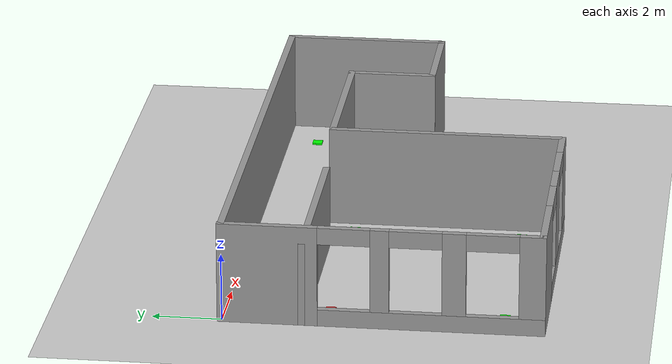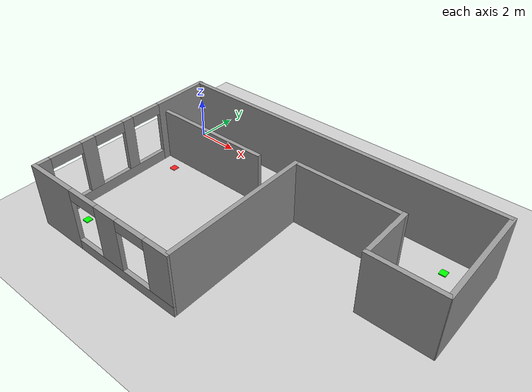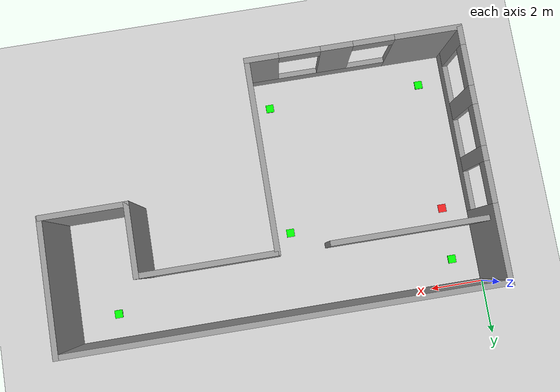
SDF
<sdf version="1.6">
 <world name="default">
  <light name="sun" type="directional">
   <pose>0 0 10 0 -0 0</pose>
   <diffuse>0.8 0.8 0.8 1</diffuse>
   <specular>0.2 0.2 0.2 1</specular>
   <attenuation>
    <range>1000</range>
    <constant>0.9</constant>
    <linear>0.01</linear>
    <quadratic>0.001</quadratic>
   </attenuation>
   <direction>-0.5 0.1 -0.9</direction>
  </light>
  <model name="ground_plane">
   <static>1</static>
   <link name="link">
    <collision name="collision">
     <geometry><plane><normal>0 0 1</normal><size>100 100</size></plane></geometry>
     <surface><friction><ode><mu>100</mu><mu2>50</mu2></ode></friction></surface>
    </collision>
    <visual name="visual">
     <cast_shadows>0</cast_shadows>
     <geometry><plane><normal>0 0 1</normal><size>100 100</size></plane></geometry>
     <material>
      <script><uri>file://media/materials/scripts/gazebo.material</uri><name>Gazebo/Grey</name></script>
     </material>
    </visual>
    <velocity_decay><linear>0</linear><angular>0</angular></velocity_decay>
   </link>
  </model>
  <physics name="default_physics" default="0" type="ode">
   <max_step_size>0.001</max_step_size>
   <real_time_factor>1</real_time_factor>
   <real_time_update_rate>1000</real_time_update_rate>
  </physics>
  <scene><ambient>0.4 0.4 0.4 1</ambient><background>0.7 0.7 0.7 1</background><shadows>1</shadows></scene>
  <spherical_coordinates>
   <surface_model>EARTH_WGS84</surface_model>
   <latitude_deg>0</latitude_deg>
   <longitude_deg>0</longitude_deg>
   <elevation>0</elevation>
   <heading_deg>0</heading_deg>
  </spherical_coordinates>
  <light name="sun_0" type="directional">
   <pose>3.4607 -3 10 0 -0 0</pose>
   <diffuse>0.8 0.8 0.8 1</diffuse>
   <specular>0.2 0.2 0.2 1</specular>
   <attenuation>
    <range>1000</range>
    <constant>0.9</constant>
    <linear>0.01</linear>
    <quadratic>0.001</quadratic>
   </attenuation>
   <direction>-0.5 0.1 -0.9</direction>
  </light>
  <model name="Altorfer_f1">
   <link name="Wall_0">
    <collision name="Wall_0_Collision">
     <geometry><box><size>15.7 0.2 3</size></box></geometry>
     <pose>0 0 1.5 0 -0 0</pose>
    </collision>
    <visual name="Wall_0_Visual">
     <pose>0 0 1.5 0 -0 0</pose>
     <geometry><box><size>15.7 0.2 3</size></box></geometry>
     <material>
      <script><uri>file://media/materials/scripts/gazebo.material</uri><name>Gazebo/Grey</name></script>
     </material>
    </visual>
    <velocity_decay><linear>0</linear><angular>0</angular></velocity_decay>
    <pose>7.715 0 0 0 -0 0</pose>
   </link>
   <link name="Wall_11">
    <collision name="Wall_11_Collision">
     <geometry><box><size>5.02 0.2 3</size></box></geometry>
     <pose>0 0 1.5 0 -0 0</pose>
    </collision>
    <visual name="Wall_11_Visual">
     <pose>0 0 1.5 0 -0 0</pose>
     <geometry><box><size>5.02 0.2 3</size></box></geometry>
     <material>
      <script><uri>file://media/materials/scripts/gazebo.material</uri><name>Gazebo/Grey</name></script>
     </material>
    </visual>
    <velocity_decay><linear>0</linear><angular>0</angular></velocity_decay>
    <pose>10.11 -2.264 0 0 -0 3.14159</pose>
   </link>
   <link name="Wall_13">
    <collision name="Wall_13_Collision">
     <geometry><box><size>6.95 0.2 3</size></box></geometry>
     <pose>0 0 1.5 0 -0 0</pose>
    </collision>
    <visual name="Wall_13_Visual">
     <pose>0 0 1.5 0 -0 0</pose>
     <geometry><box><size>6.95 0.2 3</size></box></geometry>
     <material>
      <script><uri>file://media/materials/scripts/gazebo.material</uri><name>Gazebo/Grey</name></script>
     </material>
    </visual>
    <velocity_decay><linear>0</linear><angular>0</angular></velocity_decay>
    <pose>7.631 -5.639 0 0 0 -1.5708</pose>
   </link>
   <link name="Wall_15">
    <pose>-0.038 -4.5505 0 0 0 -1.5708</pose>
    <visual name="Wall_15_Visual_0">
     <pose>-3.23935 0 1.5 0 -0 0</pose>
     <geometry><box><size>2.86777 0.2 3</size></box></geometry>
     <material>
      <script><uri>file://media/materials/scripts/gazebo.material</uri><name>Gazebo/Grey</name></script>
     </material>
    </visual>
    <collision name="Wall_15_Collision_0">
     <geometry><box><size>2.86777 0.2 3</size></box></geometry>
     <pose>-3.23935 0 1.5 0 -0 0</pose>
    </collision>
    <visual name="Wall_15_Visual_1">
     <pose>1.43389 0 0.25 0 -0 0</pose>
     <geometry><box><size>6.47871 0.2 0.5</size></box></geometry>
     <material>
      <script><uri>file://media/materials/scripts/gazebo.material</uri><name>Gazebo/Grey</name></script>
     </material>
    </visual>
    <collision name="Wall_15_Collision_1">
     <geometry><box><size>6.47871 0.2 0.5</size></box></geometry>
     <pose>1.43389 0 0.25 0 -0 0</pose>
    </collision>
    <visual name="Wall_15_Visual_2">
     <pose>-0.035282 0 1.75 0 -0 0</pose>
     <geometry><box><size>0.540368 0.2 2.5</size></box></geometry>
     <material>
      <script><uri>file://media/materials/scripts/gazebo.material</uri><name>Gazebo/Grey</name></script>
     </material>
    </visual>
    <collision name="Wall_15_Collision_2">
     <geometry><box><size>0.540368 0.2 2.5</size></box></geometry>
     <pose>-0.035282 0 1.75 0 -0 0</pose>
    </collision>
    <visual name="Wall_15_Visual_3">
     <pose>2.07544 0 1.75 0 -0 0</pose>
     <geometry><box><size>0.681083 0.2 2.5</size></box></geometry>
     <material>
      <script><uri>file://media/materials/scripts/gazebo.material</uri><name>Gazebo/Grey</name></script>
     </material>
    </visual>
    <collision name="Wall_15_Collision_3">
     <geometry><box><size>0.681083 0.2 2.5</size></box></geometry>
     <pose>2.07544 0 1.75 0 -0 0</pose>
    </collision>
    <visual name="Wall_15_Visual_4">
     <pose>4.29461 0 1.75 0 -0 0</pose>
     <geometry><box><size>0.757254 0.2 2.5</size></box></geometry>
     <material>
      <script><uri>file://media/materials/scripts/gazebo.material</uri><name>Gazebo/Grey</name></script>
     </material>
    </visual>
    <collision name="Wall_15_Collision_4">
     <geometry><box><size>0.757254 0.2 2.5</size></box></geometry>
     <pose>4.29461 0 1.75 0 -0 0</pose>
    </collision>
    <visual name="Wall_15_Visual_5">
     <pose>-1.05547 0 2.75 0 -0 0</pose>
     <geometry><box><size>1.5 0.2 0.5</size></box></geometry>
     <material>
      <script><uri>file://media/materials/scripts/gazebo.material</uri><name>Gazebo/Grey</name></script>
     </material>
    </visual>
    <collision name="Wall_15_Collision_5">
     <geometry><box><size>1.5 0.2 0.5</size></box></geometry>
     <pose>-1.05547 0 2.75 0 -0 0</pose>
    </collision>
    <visual name="Wall_15_Visual_6">
     <pose>0.984902 0 2.75 0 -0 0</pose>
     <geometry><box><size>1.5 0.2 0.5</size></box></geometry>
     <material>
      <script><uri>file://media/materials/scripts/gazebo.material</uri><name>Gazebo/Grey</name></script>
     </material>
    </visual>
    <collision name="Wall_15_Collision_6">
     <geometry><box><size>1.5 0.2 0.5</size></box></geometry>
     <pose>0.984902 0 2.75 0 -0 0</pose>
    </collision>
    <visual name="Wall_15_Visual_7">
     <pose>3.16599 0 2.75 0 -0 0</pose>
     <geometry><box><size>1.5 0.2 0.5</size></box></geometry>
     <material>
      <script><uri>file://media/materials/scripts/gazebo.material</uri><name>Gazebo/Grey</name></script>
     </material>
    </visual>
    <collision name="Wall_15_Collision_7">
     <geometry><box><size>1.5 0.2 0.5</size></box></geometry>
     <pose>3.16599 0 2.75 0 -0 0</pose>
    </collision>
    <velocity_decay><linear>0</linear><angular>0</angular></velocity_decay>
   </link>
   <link name="Wall_16">
    <pose>3.7965 -9.124 0 0 -0 0</pose>
    <visual name="Wall_16_Visual_0">
     <pose>-2.71184 0 1.5 0 -0 0</pose>
     <geometry><box><size>2.4453 0.2 3</size></box></geometry>
     <material>
      <script><uri>file://media/materials/scripts/gazebo.material</uri><name>Gazebo/Grey</name></script>
     </material>
    </visual>
    <collision name="Wall_16_Collision_0">
     <geometry><box><size>2.4453 0.2 3</size></box></geometry>
     <pose>-2.71184 0 1.5 0 -0 0</pose>
    </collision>
    <visual name="Wall_16_Visual_1">
     <pose>1.22265 0 0.25 0 -0 0</pose>
     <geometry><box><size>5.42367 0.2 0.5</size></box></geometry>
     <material>
      <script><uri>file://media/materials/scripts/gazebo.material</uri><name>Gazebo/Grey</name></script>
     </material>
    </visual>
    <collision name="Wall_16_Collision_1">
     <geometry><box><size>5.42367 0.2 0.5</size></box></geometry>
     <pose>1.22265 0 0.25 0 -0 0</pose>
    </collision>
    <visual name="Wall_16_Visual_2">
     <pose>0.597607 0 1.75 0 -0 0</pose>
     <geometry><box><size>1.17359 0.2 2.5</size></box></geometry>
     <material>
      <script><uri>file://media/materials/scripts/gazebo.material</uri><name>Gazebo/Grey</name></script>
     </material>
    </visual>
    <collision name="Wall_16_Collision_2">
     <geometry><box><size>1.17359 0.2 2.5</size></box></geometry>
     <pose>0.597607 0 1.75 0 -0 0</pose>
    </collision>
    <visual name="Wall_16_Visual_3">
     <pose>3.30944 0 1.75 0 -0 0</pose>
     <geometry><box><size>1.25008 0.2 2.5</size></box></geometry>
     <material>
      <script><uri>file://media/materials/scripts/gazebo.material</uri><name>Gazebo/Grey</name></script>
     </material>
    </visual>
    <collision name="Wall_16_Collision_3">
     <geometry><box><size>1.25008 0.2 2.5</size></box></geometry>
     <pose>3.30944 0 1.75 0 -0 0</pose>
    </collision>
    <visual name="Wall_16_Visual_4">
     <pose>-0.739186 0 2.75 0 -0 0</pose>
     <geometry><box><size>1.5 0.2 0.5</size></box></geometry>
     <material>
      <script><uri>file://media/materials/scripts/gazebo.material</uri><name>Gazebo/Grey</name></script>
     </material>
    </visual>
    <collision name="Wall_16_Collision_4">
     <geometry><box><size>1.5 0.2 0.5</size></box></geometry>
     <pose>-0.739186 0 2.75 0 -0 0</pose>
    </collision>
    <visual name="Wall_16_Visual_5">
     <pose>1.9344 0 2.75 0 -0 0</pose>
     <geometry><box><size>1.5 0.2 0.5</size></box></geometry>
     <material>
      <script><uri>file://media/materials/scripts/gazebo.material</uri><name>Gazebo/Grey</name></script>
     </material>
    </visual>
    <collision name="Wall_16_Collision_5">
     <geometry><box><size>1.5 0.2 0.5</size></box></geometry>
     <pose>1.9344 0 2.75 0 -0 0</pose>
    </collision>
    <velocity_decay><linear>0</linear><angular>0</angular></velocity_decay>
   </link>
   <link name="Wall_18">
    <collision name="Wall_18_Collision">
     <geometry><box><size>5.89896 0.2 2.5</size></box></geometry>
     <pose>0 0 1.25 0 -0 0</pose>
    </collision>
    <visual name="Wall_18_Visual">
     <pose>0 0 1.25 0 -0 0</pose>
     <geometry><box><size>5.89896 0.2 2.5</size></box></geometry>
     <material>
      <script><uri>file://media/materials/scripts/gazebo.material</uri><name>Gazebo/Grey</name></script>
     </material>
    </visual>
    <velocity_decay><linear>0</linear><angular>0</angular></velocity_decay>
    <pose>2.81106 -2.29895 0 0 -0 3.14159</pose>
   </link>
   <link name="Wall_5">
    <collision name="Wall_5_Collision">
     <geometry><box><size>4.95 0.2 3</size></box></geometry>
     <pose>0 0 1.5 0 -0 0</pose>
    </collision>
    <visual name="Wall_5_Visual">
     <pose>0 0 1.5 0 -0 0</pose>
     <geometry><box><size>4.95 0.2 3</size></box></geometry>
     <material>
      <script><uri>file://media/materials/scripts/gazebo.material</uri><name>Gazebo/Grey</name></script>
     </material>
    </visual>
    <velocity_decay><linear>0</linear><angular>0</angular></velocity_decay>
    <pose>15.549 -2.374 0 0 -0 1.5708</pose>
   </link>
   <link name="Wall_7">
    <collision name="Wall_7_Collision">
     <geometry><box><size>3.2 0.2 3</size></box></geometry>
     <pose>0 0 1.5 0 -0 0</pose>
    </collision>
    <visual name="Wall_7_Visual">
     <pose>0 0 1.5 0 -0 0</pose>
     <geometry><box><size>3.2 0.2 3</size></box></geometry>
     <material>
      <script><uri>file://media/materials/scripts/gazebo.material</uri><name>Gazebo/Grey</name></script>
     </material>
    </visual>
    <velocity_decay><linear>0</linear><angular>0</angular></velocity_decay>
    <pose>14.021 -4.762 0 0 -0 0</pose>
   </link>
   <link name="Wall_9">
    <collision name="Wall_9_Collision">
     <geometry><box><size>2.7 0.2 3</size></box></geometry>
     <pose>0 0 1.5 0 -0 0</pose>
    </collision>
    <visual name="Wall_9_Visual">
     <pose>0 0 1.5 0 -0 0</pose>
     <geometry><box><size>2.7 0.2 3</size></box></geometry>
     <material>
      <script><uri>file://media/materials/scripts/gazebo.material</uri><name>Gazebo/Grey</name></script>
     </material>
    </visual>
    <velocity_decay><linear>0</linear><angular>0</angular></velocity_decay>
    <pose>12.52 -3.511 0 0 -0 1.5708</pose>
   </link>
   <static>1</static>
  </model>
  <gravity>0 0 -9.8</gravity>
  <magnetic_field>6e-06 2.3e-05 -4.2e-05</magnetic_field>
  <atmosphere type="adiabatic"/>
  <model name="box1">
   <link name="link_0">
    <inertial>
     <mass>1</mass>
     <inertia>
      <ixx>0.166667</ixx>
      <ixy>0</ixy>
      <ixz>0</ixz>
      <iyy>0.166667</iyy>
      <iyz>0</iyz>
      <izz>0.166667</izz>
     </inertia>
    </inertial>
    <visual name="visual">
     <geometry><box><size>0.3 0.3 0.05</size></box></geometry>
     <material>
      <lighting>1</lighting>
      <script><uri>file://media/materials/scripts/gazebo.material</uri><name>Gazebo/Grey</name></script>
      <ambient>1 0 0 0.8</ambient>
      <diffuse>1 0 0 0.8</diffuse>
      <specular>0.01 0.01 0.01 1</specular>
      <emissive>0 0 0 1</emissive>
      <shader type="vertex"><normal_map>__default__</normal_map></shader>
     </material>
    </visual>
    <collision name="collision">
     <geometry><box><size>0.3 0.3 0.05</size></box></geometry>
     <surface>
      <friction>
       <ode><mu>1</mu><mu2>1</mu2><fdir1>0 0 0</fdir1><slip1>0</slip1><slip2>0</slip2></ode>
       <torsional>
        <coefficient>1</coefficient>
        <patch_radius>0</patch_radius>
        <surface_radius>0</surface_radius>
        <use_patch_radius>1</use_patch_radius>
        <ode><slip>0</slip></ode>
       </torsional>
      </friction>
      <bounce><restitution_coefficient>0</restitution_coefficient><threshold>1e+06</threshold></bounce>
      <contact>
       <collide_without_contact>0</collide_without_contact>
       <collide_without_contact_bitmask>1</collide_without_contact_bitmask>
       <collide_bitmask>1</collide_bitmask>
       <ode>
        <soft_cfm>0</soft_cfm>
        <soft_erp>0.2</soft_erp>
        <kp>1e+13</kp>
        <kd>1</kd>
        <max_vel>0.01</max_vel>
        <min_depth>0</min_depth>
       </ode>
       <bullet>
        <split_impulse>1</split_impulse>
        <split_impulse_penetration_threshold>-0.01</split_impulse_penetration_threshold>
        <soft_cfm>0</soft_cfm>
        <soft_erp>0.2</soft_erp>
        <kp>1e+13</kp>
        <kd>1</kd>
       </bullet>
      </contact>
     </surface>
    </collision>
   </link>
   <static>1</static>
   <pose>1 -3 0.025 0 -0 0</pose>
  </model>
  <model name="nbox1">
   <link name="link_0">
    <inertial>
     <mass>1</mass>
     <inertia>
      <ixx>0.166667</ixx>
      <ixy>0</ixy>
      <ixz>0</ixz>
      <iyy>0.166667</iyy>
      <iyz>0</iyz>
      <izz>0.166667</izz>
     </inertia>
    </inertial>
    <visual name="visual">
     <geometry><box><size>0.3 0.3 0.05</size></box></geometry>
     <material>
      <lighting>1</lighting>
      <script><uri>file://media/materials/scripts/gazebo.material</uri><name>Gazebo/Grey</name></script>
      <ambient>0 1 0 1</ambient>
      <diffuse>0 1 0 1</diffuse>
      <specular>0.01 0.01 0.01 1</specular>
      <emissive>0 0 0 1</emissive>
      <shader type="vertex"><normal_map>__default__</normal_map></shader>
     </material>
    </visual>
    <collision name="collision">
     <geometry><box><size>0.3 0.3 0.05</size></box></geometry>
     <surface>
      <friction>
       <ode><mu>1</mu><mu2>1</mu2><fdir1>0 0 0</fdir1><slip1>0</slip1><slip2>0</slip2></ode>
       <torsional>
        <coefficient>1</coefficient>
        <patch_radius>0</patch_radius>
        <surface_radius>0</surface_radius>
        <use_patch_radius>1</use_patch_radius>
        <ode><slip>0</slip></ode>
       </torsional>
      </friction>
      <bounce><restitution_coefficient>0</restitution_coefficient><threshold>1e+06</threshold></bounce>
      <contact>
       <collide_without_contact>0</collide_without_contact>
       <collide_without_contact_bitmask>1</collide_without_contact_bitmask>
       <collide_bitmask>1</collide_bitmask>
       <ode>
        <soft_cfm>0</soft_cfm>
        <soft_erp>0.2</soft_erp>
        <kp>1e+13</kp>
        <kd>1</kd>
        <max_vel>0.01</max_vel>
        <min_depth>0</min_depth>
       </ode>
       <bullet>
        <split_impulse>1</split_impulse>
        <split_impulse_penetration_threshold>-0.01</split_impulse_penetration_threshold>
        <soft_cfm>0</soft_cfm>
        <soft_erp>0.2</soft_erp>
        <kp>1e+13</kp>
        <kd>1</kd>
       </bullet>
      </contact>
     </surface>
    </collision>
   </link>
   <static>1</static>
   <pose>1 -8 0.025 0 -0 0.001436</pose>
  </model>
  <model name="nbox1_0">
   <link name="link_0">
    <inertial>
     <mass>1</mass>
     <inertia>
      <ixx>0.166667</ixx>
      <ixy>0</ixy>
      <ixz>0</ixz>
      <iyy>0.166667</iyy>
      <iyz>0</iyz>
      <izz>0.166667</izz>
     </inertia>
    </inertial>
    <visual name="visual">
     <geometry><box><size>0.3 0.3 0.05</size></box></geometry>
     <material>
      <lighting>1</lighting>
      <script><uri>file://media/materials/scripts/gazebo.material</uri><name>Gazebo/Grey</name></script>
      <ambient>0 1 0 1</ambient>
      <diffuse>0 1 0 1</diffuse>
      <specular>0.01 0.01 0.01 1</specular>
      <emissive>0 0 0 1</emissive>
      <shader type="vertex"><normal_map>__default__</normal_map></shader>
     </material>
    </visual>
    <collision name="collision">
     <geometry><box><size>0.3 0.3 0.05</size></box></geometry>
     <surface>
      <friction>
       <ode><mu>1</mu><mu2>1</mu2><fdir1>0 0 0</fdir1><slip1>0</slip1><slip2>0</slip2></ode>
       <torsional>
        <coefficient>1</coefficient>
        <patch_radius>0</patch_radius>
        <surface_radius>0</surface_radius>
        <use_patch_radius>1</use_patch_radius>
        <ode><slip>0</slip></ode>
       </torsional>
      </friction>
      <bounce><restitution_coefficient>0</restitution_coefficient><threshold>1e+06</threshold></bounce>
      <contact>
       <collide_without_contact>0</collide_without_contact>
       <collide_without_contact_bitmask>1</collide_without_contact_bitmask>
       <collide_bitmask>1</collide_bitmask>
       <ode>
        <soft_cfm>0</soft_cfm>
        <soft_erp>0.2</soft_erp>
        <kp>1e+13</kp>
        <kd>1</kd>
        <max_vel>0.01</max_vel>
        <min_depth>0</min_depth>
       </ode>
       <bullet>
        <split_impulse>1</split_impulse>
        <split_impulse_penetration_threshold>-0.01</split_impulse_penetration_threshold>
        <soft_cfm>0</soft_cfm>
        <soft_erp>0.2</soft_erp>
        <kp>1e+13</kp>
        <kd>1</kd>
       </bullet>
      </contact>
     </surface>
    </collision>
   </link>
   <static>1</static>
   <pose>7 -8 0.025 0 -0 0</pose>
  </model>
  <model name="nbox1_1">
   <link name="link_0">
    <inertial>
     <mass>1</mass>
     <inertia>
      <ixx>0.166667</ixx>
      <ixy>0</ixy>
      <ixz>0</ixz>
      <iyy>0.166667</iyy>
      <iyz>0</iyz>
      <izz>0.166667</izz>
     </inertia>
    </inertial>
    <visual name="visual">
     <geometry><box><size>0.3 0.3 0.05</size></box></geometry>
     <material>
      <lighting>1</lighting>
      <script><uri>file://media/materials/scripts/gazebo.material</uri><name>Gazebo/Grey</name></script>
      <ambient>0 1 0 1</ambient>
      <diffuse>0 1 0 1</diffuse>
      <specular>0.01 0.01 0.01 1</specular>
      <emissive>0 0 0 1</emissive>
      <shader type="vertex"><normal_map>__default__</normal_map></shader>
     </material>
    </visual>
    <collision name="collision">
     <geometry><box><size>0.3 0.3 0.05</size></box></geometry>
     <surface>
      <friction>
       <ode><mu>1</mu><mu2>1</mu2><fdir1>0 0 0</fdir1><slip1>0</slip1><slip2>0</slip2></ode>
       <torsional>
        <coefficient>1</coefficient>
        <patch_radius>0</patch_radius>
        <surface_radius>0</surface_radius>
        <use_patch_radius>1</use_patch_radius>
        <ode><slip>0</slip></ode>
       </torsional>
      </friction>
      <bounce><restitution_coefficient>0</restitution_coefficient><threshold>1e+06</threshold></bounce>
      <contact>
       <collide_without_contact>0</collide_without_contact>
       <collide_without_contact_bitmask>1</collide_without_contact_bitmask>
       <collide_bitmask>1</collide_bitmask>
       <ode>
        <soft_cfm>0</soft_cfm>
        <soft_erp>0.2</soft_erp>
        <kp>1e+13</kp>
        <kd>1</kd>
        <max_vel>0.01</max_vel>
        <min_depth>0</min_depth>
       </ode>
       <bullet>
        <split_impulse>1</split_impulse>
        <split_impulse_penetration_threshold>-0.01</split_impulse_penetration_threshold>
        <soft_cfm>0</soft_cfm>
        <soft_erp>0.2</soft_erp>
        <kp>1e+13</kp>
        <kd>1</kd>
       </bullet>
      </contact>
     </surface>
    </collision>
   </link>
   <static>1</static>
   <pose>7 -3 0.025 0 -0 0</pose>
  </model>
  <model name="nbox1_2">
   <link name="link_0">
    <inertial>
     <mass>1</mass>
     <inertia>
      <ixx>0.166667</ixx>
      <ixy>0</ixy>
      <ixz>0</ixz>
      <iyy>0.166667</iyy>
      <iyz>0</iyz>
      <izz>0.166667</izz>
     </inertia>
    </inertial>
    <visual name="visual">
     <geometry><box><size>0.3 0.3 0.05</size></box></geometry>
     <material>
      <lighting>1</lighting>
      <script><uri>file://media/materials/scripts/gazebo.material</uri><name>Gazebo/Grey</name></script>
      <ambient>0 1 0 1</ambient>
      <diffuse>0 1 0 1</diffuse>
      <specular>0.01 0.01 0.01 1</specular>
      <emissive>0 0 0 1</emissive>
      <shader type="vertex"><normal_map>__default__</normal_map></shader>
     </material>
    </visual>
    <collision name="collision">
     <geometry><box><size>0.3 0.3 0.05</size></box></geometry>
     <surface>
      <friction>
       <ode><mu>1</mu><mu2>1</mu2><fdir1>0 0 0</fdir1><slip1>0</slip1><slip2>0</slip2></ode>
       <torsional>
        <coefficient>1</coefficient>
        <patch_radius>0</patch_radius>
        <surface_radius>0</surface_radius>
        <use_patch_radius>1</use_patch_radius>
        <ode><slip>0</slip></ode>
       </torsional>
      </friction>
      <bounce><restitution_coefficient>0</restitution_coefficient><threshold>1e+06</threshold></bounce>
      <contact>
       <collide_without_contact>0</collide_without_contact>
       <collide_without_contact_bitmask>1</collide_without_contact_bitmask>
       <collide_bitmask>1</collide_bitmask>
       <ode>
        <soft_cfm>0</soft_cfm>
        <soft_erp>0.2</soft_erp>
        <kp>1e+13</kp>
        <kd>1</kd>
        <max_vel>0.01</max_vel>
        <min_depth>0</min_depth>
       </ode>
       <bullet>
        <split_impulse>1</split_impulse>
        <split_impulse_penetration_threshold>-0.01</split_impulse_penetration_threshold>
        <soft_cfm>0</soft_cfm>
        <soft_erp>0.2</soft_erp>
        <kp>1e+13</kp>
        <kd>1</kd>
       </bullet>
      </contact>
     </surface>
    </collision>
   </link>
   <static>1</static>
   <pose>1 -1 0.025 0 -0 0</pose>
  </model>
  <model name="nbox1_3">
   <link name="link_0">
    <inertial>
     <mass>1</mass>
     <inertia>
      <ixx>0.166667</ixx>
      <ixy>0</ixy>
      <ixz>0</ixz>
      <iyy>0.166667</iyy>
      <iyz>0</iyz>
      <izz>0.166667</izz>
     </inertia>
    </inertial>
    <visual name="visual">
     <geometry><box><size>0.3 0.3 0.05</size></box></geometry>
     <material>
      <lighting>1</lighting>
      <script><uri>file://media/materials/scripts/gazebo.material</uri><name>Gazebo/Grey</name></script>
      <ambient>0 1 0 1</ambient>
      <diffuse>0 1 0 1</diffuse>
      <specular>0.01 0.01 0.01 1</specular>
      <emissive>0 0 0 1</emissive>
      <shader type="vertex"><normal_map>__default__</normal_map></shader>
     </material>
    </visual>
    <collision name="collision">
     <geometry><box><size>0.3 0.3 0.05</size></box></geometry>
     <surface>
      <friction>
       <ode><mu>1</mu><mu2>1</mu2><fdir1>0 0 0</fdir1><slip1>0</slip1><slip2>0</slip2></ode>
       <torsional>
        <coefficient>1</coefficient>
        <patch_radius>0</patch_radius>
        <surface_radius>0</surface_radius>
        <use_patch_radius>1</use_patch_radius>
        <ode><slip>0</slip></ode>
       </torsional>
      </friction>
      <bounce><restitution_coefficient>0</restitution_coefficient><threshold>1e+06</threshold></bounce>
      <contact>
       <collide_without_contact>0</collide_without_contact>
       <collide_without_contact_bitmask>1</collide_without_contact_bitmask>
       <collide_bitmask>1</collide_bitmask>
       <ode>
        <soft_cfm>0</soft_cfm>
        <soft_erp>0.2</soft_erp>
        <kp>1e+13</kp>
        <kd>1</kd>
        <max_vel>0.01</max_vel>
        <min_depth>0</min_depth>
       </ode>
       <bullet>
        <split_impulse>1</split_impulse>
        <split_impulse_penetration_threshold>-0.01</split_impulse_penetration_threshold>
        <soft_cfm>0</soft_cfm>
        <soft_erp>0.2</soft_erp>
        <kp>1e+13</kp>
        <kd>1</kd>
       </bullet>
      </contact>
     </surface>
    </collision>
   </link>
   <static>1</static>
   <pose>14 -1 0.025 0 -0 0</pose>
  </model>
 </world>
</sdf>
